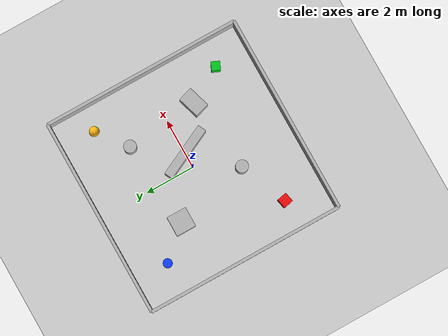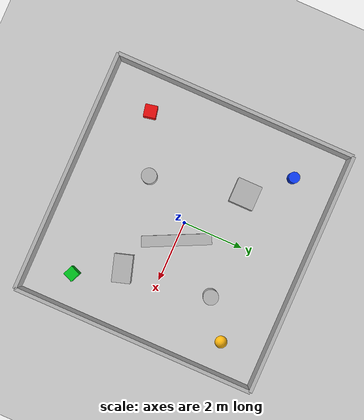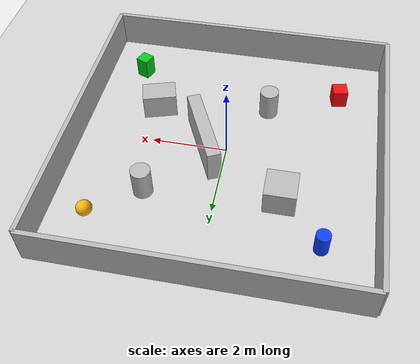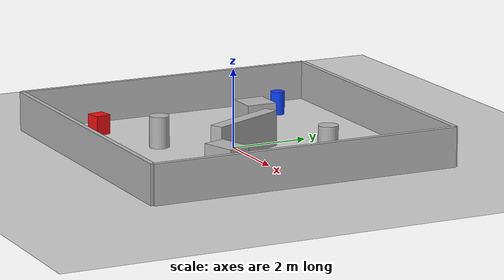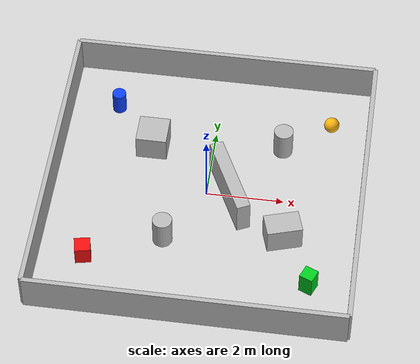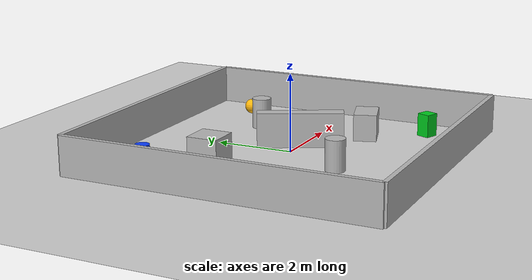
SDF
<sdf version="1.10">
  <world name="obstacle">
    <plugin filename="gz-sim-physics-system" name="gz::sim::systems::Physics"/>
    <plugin filename="gz-sim-user-commands-system" name="gz::sim::systems::UserCommands"/>
    <plugin filename="gz-sim-scene-broadcaster-system" name="gz::sim::systems::SceneBroadcaster"/>
    <plugin filename="gz-sim8-sensors-system" name="gz::sim::systems::Sensors">
      <render_engine>ogre2</render_engine>
    </plugin>
    <plugin filename="gz-sim8-imu-system" name="gz::sim::systems::Imu"/>

    <gravity>0 0 -9.81</gravity>

    <light name="sun" type="directional">
      <pose>0 0 10 0 0 0</pose>
      <diffuse>0.8 0.8 0.8 1</diffuse>
      <specular>0.2 0.2 0.2 1</specular>
      <direction>-0.5 0.1 -0.9</direction>
    </light>

    <model name="ground_plane">
      <static>true</static>
      <link name="link">
        <collision name="collision">
          <geometry><plane><normal>0 0 1</normal><size>14 14</size></plane></geometry>
        </collision>
        <visual name="visual">
          <geometry><plane><normal>0 0 1</normal><size>14 14</size></plane></geometry>
          <material>
            <ambient>0.82 0.82 0.82 1</ambient>
            <diffuse>0.82 0.82 0.82 1</diffuse>
          </material>
        </visual>
      </link>
    </model>

    <model name="obstacle_room_walls">
      <static>true</static>
      <link name="north_wall">
        <pose>0 4 0.5 0 0 0</pose>
        <collision name="collision"><geometry><box><size>8.0 0.12 1.0</size></box></geometry></collision>
        <visual name="visual"><geometry><box><size>8.0 0.12 1.0</size></box></geometry></visual>
      </link>
      <link name="south_wall">
        <pose>0 -4 0.5 0 0 0</pose>
        <collision name="collision"><geometry><box><size>8.0 0.12 1.0</size></box></geometry></collision>
        <visual name="visual"><geometry><box><size>8.0 0.12 1.0</size></box></geometry></visual>
      </link>
      <link name="east_wall">
        <pose>4 0 0.5 0 0 0</pose>
        <collision name="collision"><geometry><box><size>0.12 8.0 1.0</size></box></geometry></collision>
        <visual name="visual"><geometry><box><size>0.12 8.0 1.0</size></box></geometry></visual>
      </link>
      <link name="west_wall">
        <pose>-4 0 0.5 0 0 0</pose>
        <collision name="collision"><geometry><box><size>0.12 8.0 1.0</size></box></geometry></collision>
        <visual name="visual"><geometry><box><size>0.12 8.0 1.0</size></box></geometry></visual>
      </link>
    </model>

    <model name="static_obstacles">
      <static>true</static>
      <link name="center_barrier">
        <pose>0.6 0.0 0.45 0 0 0.45</pose>
        <collision name="collision"><geometry><box><size>0.35 2.2 0.9</size></box></geometry></collision>
        <visual name="visual"><geometry><box><size>0.35 2.2 0.9</size></box></geometry></visual>
      </link>
      <link name="left_block">
        <pose>-1.6 1.4 0.35 0 0 0</pose>
        <collision name="collision"><geometry><box><size>0.8 0.8 0.7</size></box></geometry></collision>
        <visual name="visual"><geometry><box><size>0.8 0.8 0.7</size></box></geometry></visual>
      </link>
      <link name="right_block">
        <pose>2.1 -1.2 0.35 0 0 0.3</pose>
        <collision name="collision"><geometry><box><size>0.9 0.6 0.7</size></box></geometry></collision>
        <visual name="visual"><geometry><box><size>0.9 0.6 0.7</size></box></geometry></visual>
      </link>
      <link name="narrow_post_1">
        <pose>-0.9 -1.6 0.4 0 0 0</pose>
        <collision name="collision"><geometry><cylinder><radius>0.25</radius><length>0.8</length></cylinder></geometry></collision>
        <visual name="visual"><geometry><cylinder><radius>0.25</radius><length>0.8</length></cylinder></geometry></visual>
      </link>
      <link name="narrow_post_2">
        <pose>1.8 1.7 0.4 0 0 0</pose>
        <collision name="collision"><geometry><cylinder><radius>0.25</radius><length>0.8</length></cylinder></geometry></collision>
        <visual name="visual"><geometry><cylinder><radius>0.25</radius><length>0.8</length></cylinder></geometry></visual>
      </link>
    </model>

    <model name="goal_ball">
      <static>false</static>
      <pose>3.0 2.6 0.2 0 0 0</pose>
      <link name="link">
        <inertial>
          <mass>0.15</mass>
          <inertia>
            <ixx>0.0016</ixx>
            <iyy>0.0016</iyy>
            <izz>0.0016</izz>
            <ixy>0</ixy>
            <ixz>0</ixz>
            <iyz>0</iyz>
          </inertia>
        </inertial>
        <collision name="collision">
          <geometry><sphere><radius>0.2</radius></sphere></geometry>
        </collision>
        <visual name="visual">
          <geometry><sphere><radius>0.2</radius></sphere></geometry>
          <material><ambient>1.0 0.72 0.05 1</ambient><diffuse>1.0 0.72 0.05 1</diffuse></material>
        </visual>
      </link>
    </model>

    <model name="colored_distractors">
      <static>true</static>
      <link name="red_box">
        <pose>-2.8 -2.4 0.25 0 0 0.2</pose>
        <collision name="collision">
          <geometry><box><size>0.4 0.4 0.5</size></box></geometry>
        </collision>
        <visual name="visual">
          <geometry><box><size>0.4 0.4 0.5</size></box></geometry>
          <material><ambient>0.95 0.05 0.05 1</ambient><diffuse>0.95 0.05 0.05 1</diffuse></material>
        </visual>
      </link>

      <link name="blue_cylinder">
        <pose>-2.7 2.6 0.3 0 0 0</pose>
        <collision name="collision">
          <geometry><cylinder><radius>0.18</radius><length>0.6</length></cylinder></geometry>
        </collision>
        <visual name="visual">
          <geometry><cylinder><radius>0.18</radius><length>0.6</length></cylinder></geometry>
          <material><ambient>0.05 0.25 1.0 1</ambient><diffuse>0.05 0.25 1.0 1</diffuse></material>
        </visual>
      </link>

      <link name="green_box">
        <pose>2.9 -2.6 0.3 0 0 -0.4</pose>
        <collision name="collision">
          <geometry><box><size>0.35 0.35 0.6</size></box></geometry>
        </collision>
        <visual name="visual">
          <geometry><box><size>0.35 0.35 0.6</size></box></geometry>
          <material><ambient>0.0 0.8 0.12 1</ambient><diffuse>0.0 0.8 0.12 1</diffuse></material>
        </visual>
      </link>
    </model>
  </world>
</sdf>
